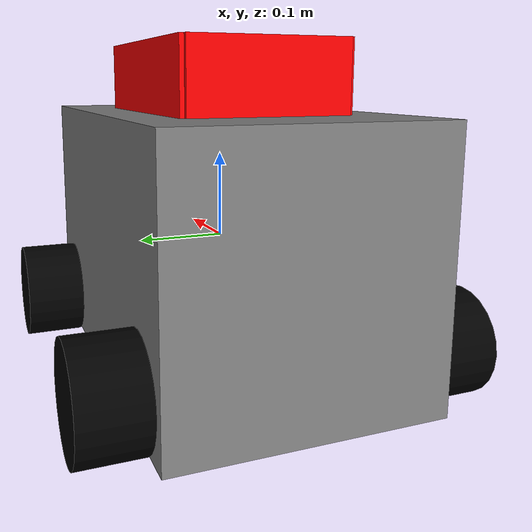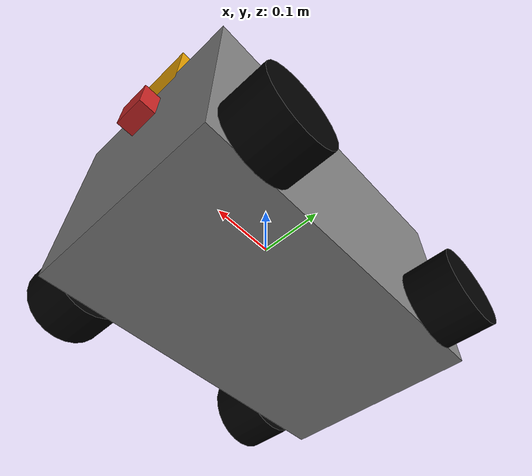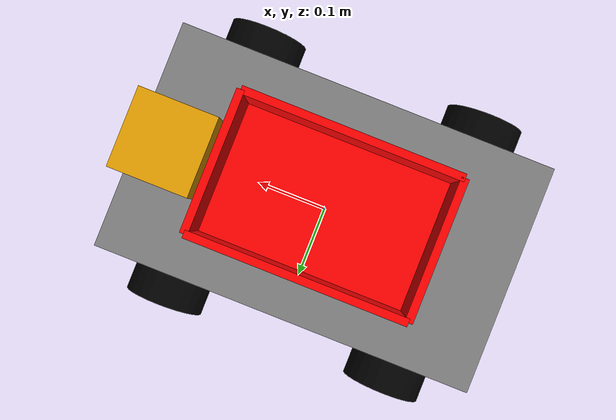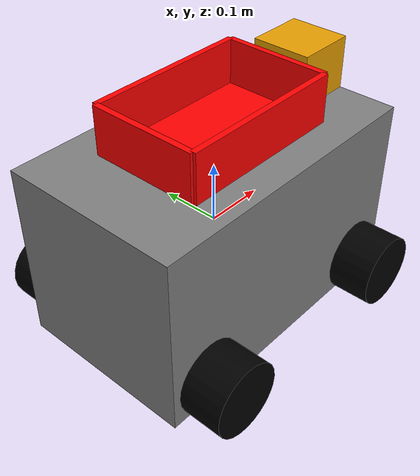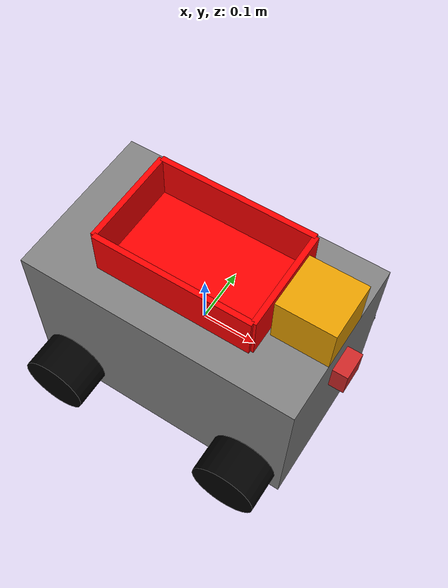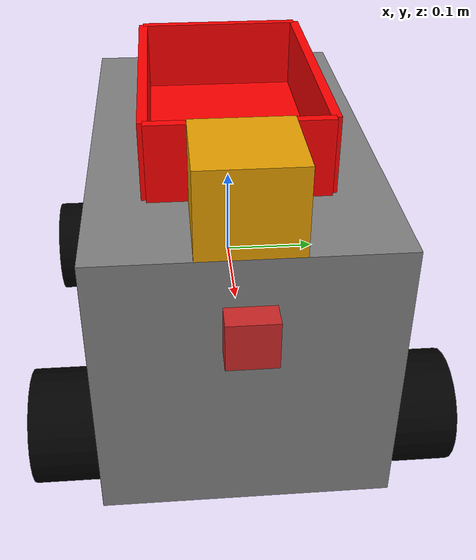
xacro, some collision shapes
<?xml version='1.0'?>

<robot name="my_robot" xmlns:xacro="http://www.ros.org/wiki/xacro">
	<xacro:property name="robot_name" value="my_robot" />
	<xacro:property name="robot_chassis_mass" value="${robot_chassis_density*robot_chassis_length*robot_chassis_width*robot_chassis_height}"/>
	<xacro:property name="robot_chassis_length" value="0.5"/>
	<xacro:property name="robot_chassis_width" value="0.3"/>
	<xacro:property name="robot_chassis_height" value="0.3"/>

	<xacro:property name="robot_wheel_mass" value="${robot_wheel_density*pi_constant*robot_wheel_radius*robot_wheel_radius*robot_wheel_length}"/>
	<xacro:property name="robot_wheel_length" value="0.07"/>
	<xacro:property name="robot_wheel_radius" value="0.06"/>
	<xacro:property name="robot_wheel_link_z_location" value="-0.1"/>

	<xacro:property name="robot_chassis_density" value="2710.0"/>
	<xacro:property name="robot_wheel_density" value="2710.0"/>

	<xacro:property name="pi_constant" value="3.14159265"/>

	<xacro:property name="camera_mass" value="0.5"/>
	<xacro:property name="hokoyu_mass" value="0.3"/>

	<xacro:property name="container_length" value="0.28"/> <!-- Length of the container -->
	<xacro:property name="container_width" value="0.18"/>  <!-- Width of the container -->
	<xacro:property name="container_height" value="0.08"/> <!-- Height of the container -->
	<xacro:property name="container_mass" value="0.2"/>   <!-- Mass of the container -->

	<xacro:property name="Iz_wheel" value="${0.5*robot_wheel_mass*robot_wheel_radius*robot_wheel_radius}" />
	<xacro:property name="I_wheel" value="${(1.0/12.0)*robot_wheel_mass*(3.0*robot_wheel_radius*robot_wheel_radius+robot_wheel_length*robot_wheel_length)}" />

	<xacro:macro name="inertia_wheel" >
		<inertial>
			<origin rpy="0 0 0" xyz="0 0 0" />
			<mass value="${robot_wheel_mass}" />
			<inertia ixx="${I_wheel}" ixy="0.0" ixz="0.0" iyy="${I_wheel}" iyz="0" izz="${Iz_wheel}" />
		</inertial>
	</xacro:macro>

	<material name="green">
    	<color rgba="0.0 1.0 0.0 1.0" />
  	</material>

	<material name="blue">
    	<color rgba="0.0 0.0 1.0 1.0" />
  	</material>

	<material name="red">
    	<color rgba="1.0 0.0 0.0 1.0" />
	</material>

	<material name="grey">
		<color rgba="0.5 0.5 0.5 1.0" /> <!-- Grey color -->
	</material>

	<material name="black">
		<color rgba="0.0 0.0 0.0 1.0" /> <!-- Black color -->
	</material>

	<material name="white">
    	<color rgba="1.0 1.0 1.0 1.0" /> <!-- White color -->
	</material>

	<link name="base_link"></link>
	<joint name="base_link_joint" type="fixed">
		<parent link="base_link"/>
		<child link="chassis" />
	</joint>

	<!-- Make Chassis of Bot -->
	<link name="chassis">

		<inertial>
			<mass value="${robot_chassis_mass}"/>
      		<origin xyz="0 0 0" rpy=" 0 0 0"/>

      		<inertia
      			ixx="${(1/12)*robot_chassis_mass*(robot_chassis_width*robot_chassis_width+robot_chassis_height*robot_chassis_height)}" ixy="0" ixz="0"
      			iyy="${(1/12)*robot_chassis_mass*(robot_chassis_length*robot_chassis_length+robot_chassis_height*robot_chassis_height)}" iyz="0"
      			izz="${(1/12)*robot_chassis_mass*(robot_chassis_length*robot_chassis_length+robot_chassis_height*robot_chassis_height)}"
      		/>
		</inertial>

		<collision name="collision">
			<origin xyz="0 0 0" rpy=" 0 0 0"/>
			<geometry>
				<box size="${robot_chassis_length} ${robot_chassis_width} ${robot_chassis_height}"/>
			</geometry>
		</collision>

		<visual name="chassis_visual">
			<geometry>
				<box size="${robot_chassis_length} ${robot_chassis_width} ${robot_chassis_height}" />
			</geometry>
			<material name="grey" />
		<origin rpy="0 0 0" xyz="0 0 0" />
		</visual>
	</link>

	<!-- Right Wheel Back -->
	<link name="right_wheel_back">

		<visual>
			<origin xyz="0 0 0" rpy="1.570795 0 0"/>
			<geometry>
				<cylinder radius="${robot_wheel_radius}" length="${robot_wheel_length}"/>
			</geometry>
			<material name="black" />
		</visual>

		<collision>
			<origin xyz="0 0 0" rpy="1.570795 0 0"/>
			<geometry>
				<cylinder radius="${robot_wheel_radius}" length="${robot_wheel_length}"/>
			</geometry>
		</collision>
		<xacro:inertia_wheel />

	</link>

	<!-- Right Wheel Front-->
	<link name="right_wheel_front">

		<visual>
			<origin xyz="0 0 0" rpy="1.5707 0 0"/>
			<geometry>
				<cylinder radius="${robot_wheel_radius}" length="${robot_wheel_length}"/>
			</geometry>
			<material  name="black" />
		</visual>

		<collision>
			<origin xyz="0 0 0" rpy="1.5707 0 0"/>
			<geometry>
				<cylinder radius="${robot_wheel_radius}" length="${robot_wheel_length}"/>
			</geometry>
		</collision>
		<xacro:inertia_wheel/>

	</link>

	<!-- Left wheel Back-->
	<link name="left_wheel_back">

		<visual>
			<origin xyz="0 0 0" rpy="1.5707 0 0"/>
			<geometry>
				<cylinder radius="${robot_wheel_radius}" length="${robot_wheel_length}"/>
			</geometry>
			<material name="black" />
		</visual>

		<collision>
			<origin xyz="0 0 0" rpy="1.5707 0 0"/>
			<geometry>
				<cylinder radius="${robot_wheel_radius}" length="${robot_wheel_length}"/>
			</geometry>
		</collision>
		<xacro:inertia_wheel />

	</link>

	<!-- Left wheel Front-->
	<link name="left_wheel_front">

		<visual>
			<origin xyz="0 0 0" rpy="1.570795 0 0"/>
			<geometry>
				<cylinder radius="${robot_wheel_radius}" length="${robot_wheel_length}"/>
			</geometry>
			<material name="black" />
		</visual>

		<collision>
			<origin xyz="0 0 0" rpy="1.570795 0 0"/>
			<geometry>
				<cylinder radius="${robot_wheel_radius}" length="${robot_wheel_length}"/>
			</geometry>
		</collision>
		<xacro:inertia_wheel />

	</link>

	<link name="container">
		<inertial>
			<mass value="${container_mass}"/>
			<origin xyz="0 0 0" rpy="0 0 0"/>
			<inertia
				ixx="${(1/12)*container_mass*(container_width*container_width + container_height*container_height)}" ixy="0" ixz="0"
				iyy="${(1/12)*container_mass*(container_length*container_length + container_height*container_height)}" iyz="0"
				izz="${(1/12)*container_mass*(container_length*container_length + container_width*container_width)}"
			/>
		</inertial>

		<!-- Bottom Plate -->
		<visual name="container_bottom">
			<origin xyz="0 0 -${container_height/2}" rpy="0 0 0"/>
			<geometry>
				<box size="${container_length} ${container_width} 0.01"/>
			</geometry>
			<material name="red"/>
		</visual>
		<collision name="container_bottom_collision">
			<origin xyz="0 0 -${container_height/2}" rpy="0 0 0"/>
			<geometry>
				<box size="${container_length} ${container_width} 0.01"/>
			</geometry>
		</collision>

		<!-- Front Wall -->
		<visual name="container_front">
			<origin xyz="0 ${container_width/2} 0" rpy="0 0 0"/>
			<geometry>
				<box size="${container_length} 0.01 ${container_height}"/>
			</geometry>
			<material name="red"/>
		</visual>
		<collision name="container_front_collision">
			<origin xyz="0 ${container_width/2} 0" rpy="0 0 0"/>
			<geometry>
				<box size="${container_length} 0.01 ${container_height}"/>
			</geometry>
		</collision>

		<!-- Back Wall -->
		<visual name="container_back">
			<origin xyz="0 -${container_width/2} 0" rpy="0 0 0"/>
			<geometry>
				<box size="${container_length} 0.01 ${container_height}"/>
			</geometry>
			<material name="red"/>
		</visual>
		<collision name="container_back_collision">
			<origin xyz="0 -${container_width/2} 0" rpy="0 0 0"/>
			<geometry>
				<box size="${container_length} 0.01 ${container_height}"/>
			</geometry>
		</collision>

		<!-- Left Wall -->
		<visual name="container_left">
			<origin xyz="${container_length/2} 0 0" rpy="0 0 0"/>
			<geometry>
				<box size="0.01 ${container_width} ${container_height}"/>
			</geometry>
			<material name="red"/>
		</visual>
		<collision name="container_left_collision">
			<origin xyz="${container_length/2} 0 0" rpy="0 0 0"/>
			<geometry>
				<box size="0.01 ${container_width} ${container_height}"/>
			</geometry>
		</collision>

		<!-- Right Wall -->
		<visual name="container_right">
			<origin xyz="-${container_length/2} 0 0" rpy="0 0 0"/>
			<geometry>
				<box size="0.01 ${container_width} ${container_height}"/>
			</geometry>
			<material name="red"/>
		</visual>
		<collision name="container_right_collision">
			<origin xyz="-${container_length/2} 0 0" rpy="0 0 0"/>
			<geometry>
				<box size="0.01 ${container_width} ${container_height}"/>
			</geometry>
		</collision>
	</link>

	<!-- Camera -->
	<link name="camera">
		<inertial>
			<mass value="${camera_mass}"/>
			<origin xyz="0 0 0" rpy="0 0 0"/>
			<inertia
		        ixx="1e-6" ixy="0.0" ixz="0.0"
		        iyy="1e-6" iyz="0.0"
		        izz="1e-6"
		      />
		</inertial>

		<visual>
			<origin xyz="0 0 0" rpy="0 0 0"/>
			<geometry>
				<box size="0.05 0.05 0.05"/>
			</geometry>
		</visual>

		<collision>
			<origin xyz="0 0 0" rpy="0 0 0"/>
			<geometry>
				<box size="0.05 0.05 0.05"/>
			</geometry>
		</collision>
	</link>

	<!-- Hokuyo Lidar -->
	<link name="hokuyo">
		<inertial>
			<mass value="${hokoyu_mass}"/>
			<origin xyz="0 0 0" rpy="0 0 0"/>

			<inertia
		        ixx="1e-6" ixy="0.0" ixz="0.0"
		        iyy="1e-6" iyz="0.0"
		        izz="1e-6"
		      />
		</inertial>

		<visual>
			<origin xyz="0 0 0" rpy="0 0 0"/>
			<geometry>
				<mesh filename="package://robot_description/meshes/hokuyo.dae"/>
			</geometry>
		</visual>

		<collision>
			<origin xyz="0 0 0" rpy="0 0 0"/>
			<geometry>
				<box size="0.1 0.1 0.1"/>
			</geometry>
		</collision>
	</link>

	<!--Joints -->

	<!-- Right Wheel Joint Back-->
	<joint type="continuous" name="right_wheel_hinge_back">
	    <origin xyz="${-robot_chassis_length/2 + 1.2*robot_wheel_radius} ${-robot_chassis_width/2 - robot_wheel_length/2} ${robot_wheel_link_z_location}" rpy="0 0 0" />
	    <parent link="chassis"/>
	    <child link="right_wheel_back" />
	    <axis xyz="0 1 0"/>
	    <limit effort="10000" velocity="1000" />
	    <dynamics damping="1.0" friction="1.0" />
	</joint>

	<!-- Right Wheel Joint Front-->
	<joint type="continuous" name="right_wheel_hinge_front">
	    <origin xyz="${robot_chassis_length/2 - 1.2*robot_wheel_radius} ${-robot_chassis_width/2 - robot_wheel_length/2} ${robot_wheel_link_z_location}" rpy="0 0 0" />
	    <parent link="chassis"/>
	    <child link="right_wheel_front" />
	    <axis xyz="0 1 0"/>
	    <limit effort="10000" velocity="1000" />
	    <dynamics damping="1.0" friction="1.0" />
	</joint>

	<!-- Left Wheel Joint Back-->
	<joint type="continuous" name="left_wheel_hinge_back">
	    <origin xyz="${-robot_chassis_length/2 + 1.2*robot_wheel_radius} ${robot_chassis_width/2 + robot_wheel_length/2} ${robot_wheel_link_z_location}" rpy="0 0 0" />
	    <parent link="chassis"/>
	    <child link="left_wheel_back" />
	    <axis xyz="0 1 0"/>
	    <limit effort="10000" velocity="1000" />
	    <dynamics damping="1.0" friction="1.0" />
	</joint>

	<!-- Left Wheel Joint Front-->
	<joint type="continuous" name="left_wheel_hinge_front">
	    <origin xyz="${robot_chassis_length/2 - 1.2*robot_wheel_radius} ${robot_chassis_width/2 + robot_wheel_length/2} ${robot_wheel_link_z_location}" rpy="0 0 0" />
	    <parent link="chassis"/>
	    <child link="left_wheel_front" />
	    <axis xyz="0 1 0"/>
	    <limit effort="10000" velocity="1000" />
	    <dynamics damping="1.0" friction="1.0" />
	</joint>

	<!-- Camera Joint -->
	<joint name="camera_joint" type="fixed">
		<origin xyz="0.252 0 ${robot_chassis_height/4}" rpy="0 0 0" />
		<parent link="chassis"/>
		<child link="camera" />
		<axis xyz="0 1 0"/>
	</joint>

	<!-- Hokoyu Joint -->
	<joint name="hokuyo_joint" type="fixed">
	    <origin xyz="0.2 0 ${robot_chassis_height/2+0.0375}" rpy="0 0 0" />
	    <parent link="chassis"/>
	    <child link="hokuyo" />
	    <axis xyz="0 1 0"/>
	</joint>

	<joint name="container_joint" type="fixed">
		<origin xyz="0 0 ${robot_chassis_height/2 + container_height/2}" rpy="0 0 0" />
		<parent link="chassis"/>
		<child link="container" />
		<axis xyz="0 1 0"/>
	</joint>

	<!-- Color of bot -->
	<gazebo reference="left_wheel_front">
		<material>Gazebo/Black</material>
		<kp>1000000.0</kp> <!-- kp and kd for rubber -->
		<kd>100.0</kd>
		<mu1>1.0</mu1>
		<mu2>1.0</mu2>
		<maxVel>1.0</maxVel>
		<minDepth>0.00</minDepth>
	</gazebo>

	<gazebo reference="left_wheel_back">
		<material>Gazebo/Black</material>
		<kp>1000000.0</kp> <!-- kp and kd for rubber -->
		<kd>100.0</kd>
		<mu1>1.0</mu1>
		<mu2>1.0</mu2>
		<maxVel>1.0</maxVel>
		<minDepth>0.00</minDepth>
	</gazebo>

	<gazebo reference="right_wheel_front">
		<material>Gazebo/Black</material>
		<kp>1000000.0</kp> <!-- kp and kd for rubber -->
		<kd>100.0</kd>
		<mu1>1.0</mu1>
		<mu2>1.0</mu2>
		<maxVel>1.0</maxVel>
		<minDepth>0.00</minDepth>
	</gazebo>
	<gazebo reference="right_wheel_back">
		<material>Gazebo/Black</material>
		<kp>1000000.0</kp> <!-- kp and kd for rubber -->
		<kd>100.0</kd>
		<mu1>1.0</mu1>
		<mu2>1.0</mu2>
		<maxVel>1.0</maxVel>
		<minDepth>0.00</minDepth>
	</gazebo>

	<gazebo reference="camera">
		<material>Gazebo/Red</material>
	</gazebo>

	<gazebo reference="chassis">
		<material>Gazebo/Grey</material>
	</gazebo>

	<gazebo reference="container">
		<material>Gazebo/White</material>
	</gazebo>

	<!-- Motor, Camera and Lidar Simulation -->
	<xacro:include filename="$(find robot_description)/urdf/my_robot.gazebo" />

</robot>
